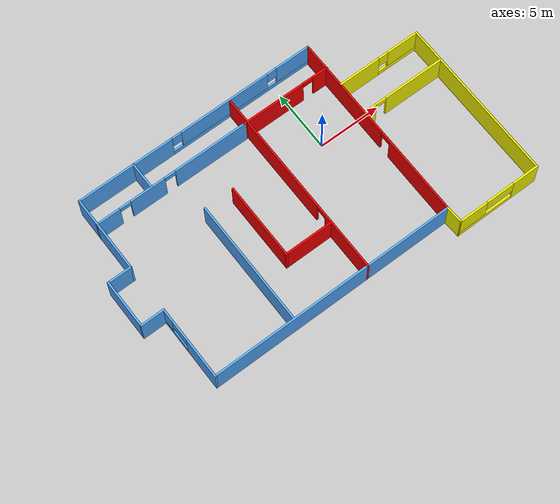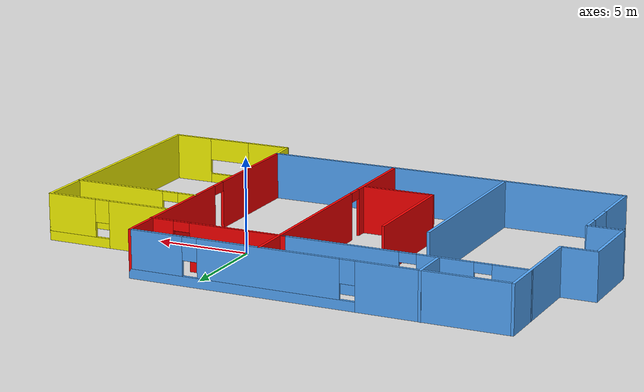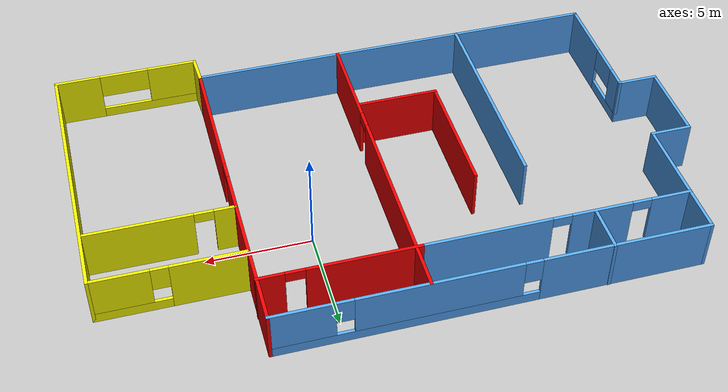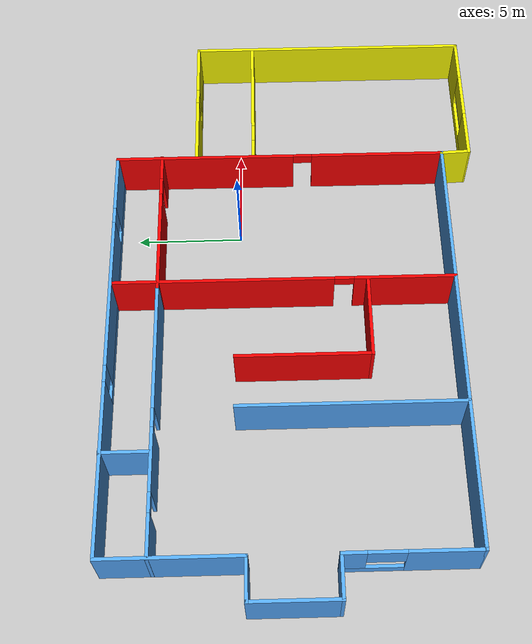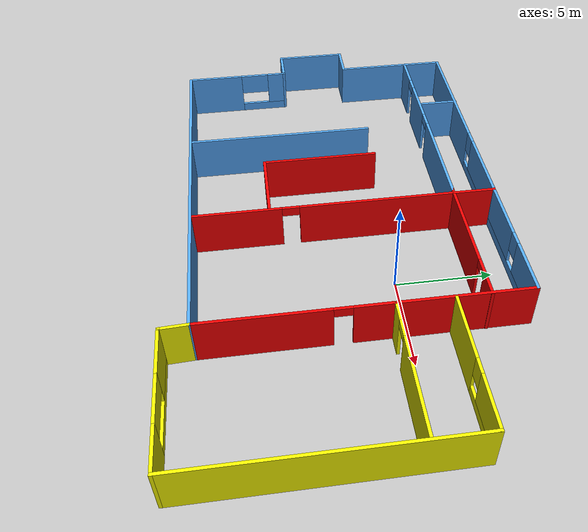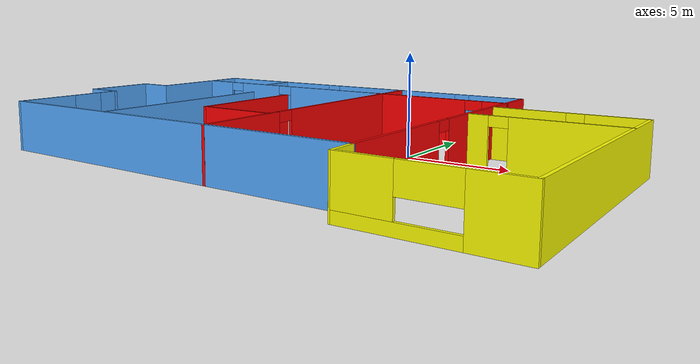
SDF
<?xml version='1.0'?>
<sdf version='1.6'>
  <model name='Q802'>
    <pose frame=''>-4.12697 -2.66081 0 0 -0 0</pose>
    <link name='Wall_10'>
      <collision name='Wall_10_Collision'>
        <geometry>
          <box>
            <size>6.3 0.15 2.5</size>
          </box>
        </geometry>
        <pose frame=''>0 0 1.25 0 -0 0</pose>
      </collision>
      <visual name='Wall_10_Visual'>
        <pose frame=''>0 0 1.25 0 -0 0</pose>
        <geometry>
          <box>
            <size>6.3 0.15 2.5</size>
          </box>
        </geometry>
        <material>
          <script>
            <uri>file://media/materials/scripts/gazebo.material</uri>
            <name>Gazebo/Grey</name>
          </script>
          <ambient>0.333333 0.666667 1 1</ambient>
        </material>
        <meta>
          <layer>0</layer>
        </meta>
      </visual>
      <pose frame=''>-12.4599 5.50976 0 0 -0 1.5708</pose>
    </link>
    <link name='Wall_14'>
      <pose frame=''>10.8849 4.74464 0 0 -0 0</pose>
      <visual name='Wall_14_Visual_0'>
        <pose frame=''>-1.76886 0 1.25 0 -0 0</pose>
        <geometry>
          <box>
            <size>3.46228 0.15 2.5</size>
          </box>
        </geometry>
        <material>
          <script>
            <uri>file://media/materials/scripts/gazebo.material</uri>
            <name>Gazebo/Grey</name>
          </script>
          <ambient>1 1 0 1</ambient>
        </material>
        <meta>
          <layer>0</layer>
        </meta>
      </visual>
      <collision name='Wall_14_Collision_0'>
        <geometry>
          <box>
            <size>3.46228 0.15 2.5</size>
          </box>
        </geometry>
        <pose frame=''>-1.76886 0 1.25 0 -0 0</pose>
      </collision>
      <visual name='Wall_14_Visual_1'>
        <pose frame=''>1.73114 0 0.25 0 -0 0</pose>
        <geometry>
          <box>
            <size>3.53772 0.15 0.5</size>
          </box>
        </geometry>
        <material>
          <script>
            <uri>file://media/materials/scripts/gazebo.material</uri>
            <name>Gazebo/Grey</name>
          </script>
          <ambient>1 1 0 1</ambient>
        </material>
        <meta>
          <layer>0</layer>
        </meta>
      </visual>
      <collision name='Wall_14_Collision_1'>
        <geometry>
          <box>
            <size>3.53772 0.15 0.5</size>
          </box>
        </geometry>
        <pose frame=''>1.73114 0 0.25 0 -0 0</pose>
      </collision>
      <visual name='Wall_14_Visual_2'>
        <pose frame=''>2.13114 0 1.5 0 -0 0</pose>
        <geometry>
          <box>
            <size>2.73772 0.15 2</size>
          </box>
        </geometry>
        <material>
          <script>
            <uri>file://media/materials/scripts/gazebo.material</uri>
            <name>Gazebo/Grey</name>
          </script>
          <ambient>1 1 0 1</ambient>
        </material>
        <meta>
          <layer>0</layer>
        </meta>
      </visual>
      <collision name='Wall_14_Collision_2'>
        <geometry>
          <box>
            <size>2.73772 0.15 2</size>
          </box>
        </geometry>
        <pose frame=''>2.13114 0 1.5 0 -0 0</pose>
      </collision>
      <visual name='Wall_14_Visual_3'>
        <pose frame=''>0.362281 0 1.9 0 -0 0</pose>
        <geometry>
          <box>
            <size>0.8 0.15 1.2</size>
          </box>
        </geometry>
        <material>
          <script>
            <uri>file://media/materials/scripts/gazebo.material</uri>
            <name>Gazebo/Grey</name>
          </script>
          <ambient>1 1 0 1</ambient>
        </material>
        <meta>
          <layer>0</layer>
        </meta>
      </visual>
      <collision name='Wall_14_Collision_3'>
        <geometry>
          <box>
            <size>0.8 0.15 1.2</size>
          </box>
        </geometry>
        <pose frame=''>0.362281 0 1.9 0 -0 0</pose>
      </collision>
    </link>
    <link name='Wall_15'>
      <collision name='Wall_15_Collision'>
        <geometry>
          <box>
            <size>13.5 0.15 2.5</size>
          </box>
        </geometry>
        <pose frame=''>0 0 1.25 0 -0 0</pose>
      </collision>
      <visual name='Wall_15_Visual'>
        <pose frame=''>0 0 1.25 0 -0 0</pose>
        <geometry>
          <box>
            <size>13.5 0.15 2.5</size>
          </box>
        </geometry>
        <material>
          <script>
            <uri>file://media/materials/scripts/gazebo.material</uri>
            <name>Gazebo/Grey</name>
          </script>
          <ambient>1 1 0 1</ambient>
        </material>
        <meta>
          <layer>0</layer>
        </meta>
      </visual>
      <pose frame=''>14.3099 -1.93036 0 0 0 -1.5708</pose>
    </link>
    <link name='Wall_16'>
      <pose frame=''>10.8849 -8.60536 0 0 -0 3.14159</pose>
      <visual name='Wall_16_Visual_0'>
        <pose frame=''>-2.39252 0 1.25 0 -0 0</pose>
        <geometry>
          <box>
            <size>2.21496 0.15 2.5</size>
          </box>
        </geometry>
        <material>
          <script>
            <uri>file://media/materials/scripts/gazebo.material</uri>
            <name>Gazebo/Grey</name>
          </script>
          <ambient>1 1 0 1</ambient>
        </material>
        <meta>
          <layer>0</layer>
        </meta>
      </visual>
      <collision name='Wall_16_Collision_0'>
        <geometry>
          <box>
            <size>2.21496 0.15 2.5</size>
          </box>
        </geometry>
        <pose frame=''>-2.39252 0 1.25 0 -0 0</pose>
      </collision>
      <visual name='Wall_16_Visual_1'>
        <pose frame=''>1.10748 0 0.25 0 -0 0</pose>
        <geometry>
          <box>
            <size>4.78504 0.15 0.5</size>
          </box>
        </geometry>
        <material>
          <script>
            <uri>file://media/materials/scripts/gazebo.material</uri>
            <name>Gazebo/Grey</name>
          </script>
          <ambient>1 1 0 1</ambient>
        </material>
        <meta>
          <layer>0</layer>
        </meta>
      </visual>
      <collision name='Wall_16_Collision_1'>
        <geometry>
          <box>
            <size>4.78504 0.15 0.5</size>
          </box>
        </geometry>
        <pose frame=''>1.10748 0 0.25 0 -0 0</pose>
      </collision>
      <visual name='Wall_16_Visual_2'>
        <pose frame=''>2.28581 0 1.5 0 -0 0</pose>
        <geometry>
          <box>
            <size>2.42838 0.15 2</size>
          </box>
        </geometry>
        <material>
          <script>
            <uri>file://media/materials/scripts/gazebo.material</uri>
            <name>Gazebo/Grey</name>
          </script>
          <ambient>1 1 0 1</ambient>
        </material>
        <meta>
          <layer>0</layer>
        </meta>
      </visual>
      <collision name='Wall_16_Collision_2'>
        <geometry>
          <box>
            <size>2.42838 0.15 2</size>
          </box>
        </geometry>
        <pose frame=''>2.28581 0 1.5 0 -0 0</pose>
      </collision>
      <visual name='Wall_16_Visual_3'>
        <pose frame=''>-0.106709 0 1.9 0 -0 0</pose>
        <geometry>
          <box>
            <size>2.35665 0.15 1.2</size>
          </box>
        </geometry>
        <material>
          <script>
            <uri>file://media/materials/scripts/gazebo.material</uri>
            <name>Gazebo/Grey</name>
          </script>
          <ambient>1 1 0 1</ambient>
        </material>
        <meta>
          <layer>0</layer>
        </meta>
      </visual>
      <collision name='Wall_16_Collision_3'>
        <geometry>
          <box>
            <size>2.35665 0.15 1.2</size>
          </box>
        </geometry>
        <pose frame=''>-0.106709 0 1.9 0 -0 0</pose>
      </collision>
    </link>
    <link name='Wall_17'>
      <collision name='Wall_17_Collision'>
        <geometry>
          <box>
            <size>1.49193 0.15 2.5</size>
          </box>
        </geometry>
        <pose frame=''>0 0 1.25 0 -0 0</pose>
      </collision>
      <visual name='Wall_17_Visual'>
        <pose frame=''>0 0 1.25 0 -0 0</pose>
        <geometry>
          <box>
            <size>1.49193 0.15 2.5</size>
          </box>
        </geometry>
        <material>
          <script>
            <uri>file://media/materials/scripts/gazebo.material</uri>
            <name>Gazebo/Grey</name>
          </script>
          <ambient>1 1 0 1</ambient>
        </material>
        <meta>
          <layer>0</layer>
        </meta>
      </visual>
      <pose frame=''>7.425 -7.9353 0 0 -0 1.62282</pose>
    </link>
    <link name='Wall_19'>
      <pose frame=''>0.378646 0.656096 0 0 0 -1.5708</pose>
      <visual name='Wall_19_Visual_0'>
        <pose frame=''>-2.82346 0 1.25 0 -0 0</pose>
        <geometry>
          <box>
            <size>10.3531 0.15 2.5</size>
          </box>
        </geometry>
        <material>
          <script>
            <uri>file://media/materials/scripts/gazebo.material</uri>
            <name>Gazebo/Grey</name>
          </script>
          <ambient>1 0 0 1</ambient>
        </material>
        <meta>
          <layer>0</layer>
        </meta>
      </visual>
      <collision name='Wall_19_Collision_0'>
        <geometry>
          <box>
            <size>10.3531 0.15 2.5</size>
          </box>
        </geometry>
        <pose frame=''>-2.82346 0 1.25 0 -0 0</pose>
      </collision>
      <visual name='Wall_19_Visual_1'>
        <pose frame=''>5.62654 0 1.25 0 -0 0</pose>
        <geometry>
          <box>
            <size>4.74692 0.15 2.5</size>
          </box>
        </geometry>
        <material>
          <script>
            <uri>file://media/materials/scripts/gazebo.material</uri>
            <name>Gazebo/Grey</name>
          </script>
          <ambient>1 0 0 1</ambient>
        </material>
        <meta>
          <layer>0</layer>
        </meta>
      </visual>
      <collision name='Wall_19_Collision_1'>
        <geometry>
          <box>
            <size>4.74692 0.15 2.5</size>
          </box>
        </geometry>
        <pose frame=''>5.62654 0 1.25 0 -0 0</pose>
      </collision>
      <visual name='Wall_19_Visual_2'>
        <pose frame=''>2.80308 0 2.25 0 -0 0</pose>
        <geometry>
          <box>
            <size>0.9 0.15 0.5</size>
          </box>
        </geometry>
        <material>
          <script>
            <uri>file://media/materials/scripts/gazebo.material</uri>
            <name>Gazebo/Grey</name>
          </script>
          <ambient>1 0 0 1</ambient>
        </material>
        <meta>
          <layer>0</layer>
        </meta>
      </visual>
      <collision name='Wall_19_Collision_2'>
        <geometry>
          <box>
            <size>0.9 0.15 0.5</size>
          </box>
        </geometry>
        <pose frame=''>2.80308 0 2.25 0 -0 0</pose>
      </collision>
    </link>
    <link name='Wall_21'>
      <pose frame=''>3.76429 6.42301 0 0 -0 3.14159</pose>
      <visual name='Wall_21_Visual_0'>
        <pose frame=''>-3.07248 0 1.25 0 -0 0</pose>
        <geometry>
          <box>
            <size>1.31441 0.15 2.5</size>
          </box>
        </geometry>
        <material>
          <script>
            <uri>file://media/materials/scripts/gazebo.material</uri>
            <name>Gazebo/Grey</name>
          </script>
          <ambient>1 0 0 1</ambient>
        </material>
        <meta>
          <layer>0</layer>
        </meta>
      </visual>
      <collision name='Wall_21_Collision_0'>
        <geometry>
          <box>
            <size>1.31441 0.15 2.5</size>
          </box>
        </geometry>
        <pose frame=''>-3.07248 0 1.25 0 -0 0</pose>
      </collision>
      <visual name='Wall_21_Visual_1'>
        <pose frame=''>1.1072 0 1.25 0 -0 0</pose>
        <geometry>
          <box>
            <size>5.24495 0.15 2.5</size>
          </box>
        </geometry>
        <material>
          <script>
            <uri>file://media/materials/scripts/gazebo.material</uri>
            <name>Gazebo/Grey</name>
          </script>
          <ambient>1 0 0 1</ambient>
        </material>
        <meta>
          <layer>0</layer>
        </meta>
      </visual>
      <collision name='Wall_21_Collision_1'>
        <geometry>
          <box>
            <size>5.24495 0.15 2.5</size>
          </box>
        </geometry>
        <pose frame=''>1.1072 0 1.25 0 -0 0</pose>
      </collision>
      <visual name='Wall_21_Visual_2'>
        <pose frame=''>-1.96527 0 2.25 0 -0 0</pose>
        <geometry>
          <box>
            <size>0.9 0.15 0.5</size>
          </box>
        </geometry>
        <material>
          <script>
            <uri>file://media/materials/scripts/gazebo.material</uri>
            <name>Gazebo/Grey</name>
          </script>
          <ambient>1 0 0 1</ambient>
        </material>
        <meta>
          <layer>0</layer>
        </meta>
      </visual>
      <collision name='Wall_21_Collision_2'>
        <geometry>
          <box>
            <size>0.9 0.15 0.5</size>
          </box>
        </geometry>
        <pose frame=''>-1.96527 0 2.25 0 -0 0</pose>
      </collision>
    </link>
    <link name='Wall_22'>
      <pose frame=''>-6.16712 6.42301 0 0 -0 3.14159</pose>
      <visual name='Wall_22_Visual_0'>
        <pose frame=''>-3.32437 0 1.25 0 -0 0</pose>
        <geometry>
          <box>
            <size>6.10127 0.15 2.5</size>
          </box>
        </geometry>
        <material>
          <script>
            <uri>file://media/materials/scripts/gazebo.material</uri>
            <name>Gazebo/Grey</name>
          </script>
          <ambient>0.333333 0.666667 1 1</ambient>
        </material>
        <meta>
          <layer>0</layer>
        </meta>
      </visual>
      <collision name='Wall_22_Collision_0'>
        <geometry>
          <box>
            <size>6.10127 0.15 2.5</size>
          </box>
        </geometry>
        <pose frame=''>-3.32437 0 1.25 0 -0 0</pose>
      </collision>
      <visual name='Wall_22_Visual_1'>
        <pose frame=''>2.07212 0 1.25 0 -0 0</pose>
        <geometry>
          <box>
            <size>2.8917 0.15 2.5</size>
          </box>
        </geometry>
        <material>
          <script>
            <uri>file://media/materials/scripts/gazebo.material</uri>
            <name>Gazebo/Grey</name>
          </script>
          <ambient>0.333333 0.666667 1 1</ambient>
        </material>
        <meta>
          <layer>0</layer>
        </meta>
      </visual>
      <collision name='Wall_22_Collision_1'>
        <geometry>
          <box>
            <size>2.8917 0.15 2.5</size>
          </box>
        </geometry>
        <pose frame=''>2.07212 0 1.25 0 -0 0</pose>
      </collision>
      <visual name='Wall_22_Visual_2'>
        <pose frame=''>5.39648 0 1.25 0 -0 0</pose>
        <geometry>
          <box>
            <size>1.95704 0.15 2.5</size>
          </box>
        </geometry>
        <material>
          <script>
            <uri>file://media/materials/scripts/gazebo.material</uri>
            <name>Gazebo/Grey</name>
          </script>
          <ambient>0.333333 0.666667 1 1</ambient>
        </material>
        <meta>
          <layer>0</layer>
        </meta>
      </visual>
      <collision name='Wall_22_Collision_2'>
        <geometry>
          <box>
            <size>1.95704 0.15 2.5</size>
          </box>
        </geometry>
        <pose frame=''>5.39648 0 1.25 0 -0 0</pose>
      </collision>
      <visual name='Wall_22_Visual_3'>
        <pose frame=''>0.176266 0 2.25 0 -0 0</pose>
        <geometry>
          <box>
            <size>0.9 0.15 0.5</size>
          </box>
        </geometry>
        <material>
          <script>
            <uri>file://media/materials/scripts/gazebo.material</uri>
            <name>Gazebo/Grey</name>
          </script>
          <ambient>0.333333 0.666667 1 1</ambient>
        </material>
        <meta>
          <layer>0</layer>
        </meta>
      </visual>
      <collision name='Wall_22_Collision_3'>
        <geometry>
          <box>
            <size>0.9 0.15 0.5</size>
          </box>
        </geometry>
        <pose frame=''>0.176266 0 2.25 0 -0 0</pose>
      </collision>
      <visual name='Wall_22_Visual_4'>
        <pose frame=''>3.96796 0 2.25 0 -0 0</pose>
        <geometry>
          <box>
            <size>0.9 0.15 0.5</size>
          </box>
        </geometry>
        <material>
          <script>
            <uri>file://media/materials/scripts/gazebo.material</uri>
            <name>Gazebo/Grey</name>
          </script>
          <ambient>0.333333 0.666667 1 1</ambient>
        </material>
        <meta>
          <layer>0</layer>
        </meta>
      </visual>
      <collision name='Wall_22_Collision_4'>
        <geometry>
          <box>
            <size>0.9 0.15 0.5</size>
          </box>
        </geometry>
        <pose frame=''>3.96796 0 2.25 0 -0 0</pose>
      </collision>
    </link>
    <link name='Wall_24'>
      <collision name='Wall_24_Collision'>
        <geometry>
          <box>
            <size>4 0.15 2.5</size>
          </box>
        </geometry>
        <pose frame=''>0 0 1.25 0 -0 0</pose>
      </collision>
      <visual name='Wall_24_Visual'>
        <pose frame=''>0 0 1.25 0 -0 0</pose>
        <geometry>
          <box>
            <size>4 0.15 2.5</size>
          </box>
        </geometry>
        <material>
          <script>
            <uri>file://media/materials/scripts/gazebo.material</uri>
            <name>Gazebo/Grey</name>
          </script>
          <ambient>1 0 0 1</ambient>
        </material>
        <meta>
          <layer>0</layer>
        </meta>
      </visual>
      <pose frame=''>-1.57906 -3.23308 0 0 -0 3.14159</pose>
    </link>
    <link name='Wall_25'>
      <collision name='Wall_25_Collision'>
        <geometry>
          <box>
            <size>6.25 0.15 2.5</size>
          </box>
        </geometry>
        <pose frame=''>0 0 1.25 0 -0 0</pose>
      </collision>
      <visual name='Wall_25_Visual'>
        <pose frame=''>0 0 1.25 0 -0 0</pose>
        <geometry>
          <box>
            <size>6.25 0.15 2.5</size>
          </box>
        </geometry>
        <material>
          <script>
            <uri>file://media/materials/scripts/gazebo.material</uri>
            <name>Gazebo/Grey</name>
          </script>
          <ambient>1 0 0 1</ambient>
        </material>
        <meta>
          <layer>0</layer>
        </meta>
      </visual>
      <pose frame=''>-3.50406 -0.18308 0 0 -0 1.5708</pose>
    </link>
    <link name='Wall_27'>
      <collision name='Wall_27_Collision'>
        <geometry>
          <box>
            <size>10.25 0.15 2.5</size>
          </box>
        </geometry>
        <pose frame=''>0 0 1.25 0 -0 0</pose>
      </collision>
      <visual name='Wall_27_Visual'>
        <pose frame=''>0 0 1.25 0 -0 0</pose>
        <geometry>
          <box>
            <size>10.25 0.15 2.5</size>
          </box>
        </geometry>
        <material>
          <script>
            <uri>file://media/materials/scripts/gazebo.material</uri>
            <name>Gazebo/Grey</name>
          </script>
          <ambient>0.333333 0.666667 1 1</ambient>
        </material>
        <meta>
          <layer>0</layer>
        </meta>
      </visual>
      <pose frame=''>-5.89914 -2.18239 0 0 -0 1.5708</pose>
    </link>
    <link name='Wall_29'>
      <collision name='Wall_29_Collision'>
        <geometry>
          <box>
            <size>2.25 0.15 2.5</size>
          </box>
        </geometry>
        <pose frame=''>0 0 1.25 0 -0 0</pose>
      </collision>
      <visual name='Wall_29_Visual'>
        <pose frame=''>0 0 1.25 0 -0 0</pose>
        <geometry>
          <box>
            <size>2.25 0.15 2.5</size>
          </box>
        </geometry>
        <material>
          <script>
            <uri>file://media/materials/scripts/gazebo.material</uri>
            <name>Gazebo/Grey</name>
          </script>
          <ambient>0.333333 0.666667 1 1</ambient>
        </material>
        <meta>
          <layer>0</layer>
        </meta>
      </visual>
      <pose frame=''>-7.90194 7.55916 0 0 0 -1.5708</pose>
    </link>
    <link name='Wall_3'>
      <pose frame=''>-2.53489 8.58475 0 0 -0 0</pose>
      <visual name='Wall_3_Visual_0'>
        <pose frame=''>-6.04357 0 1.25 0 -0 0</pose>
        <geometry>
          <box>
            <size>7.91286 0.15 2.5</size>
          </box>
        </geometry>
        <material>
          <script>
            <uri>file://media/materials/scripts/gazebo.material</uri>
            <name>Gazebo/Grey</name>
          </script>
          <ambient>0.333333 0.666667 1 1</ambient>
        </material>
        <meta>
          <layer>0</layer>
        </meta>
      </visual>
      <collision name='Wall_3_Collision_0'>
        <geometry>
          <box>
            <size>7.91286 0.15 2.5</size>
          </box>
        </geometry>
        <pose frame=''>-6.04357 0 1.25 0 -0 0</pose>
      </collision>
      <visual name='Wall_3_Visual_1'>
        <pose frame=''>3.95643 0 0.25 0 -0 0</pose>
        <geometry>
          <box>
            <size>12.0871 0.15 0.5</size>
          </box>
        </geometry>
        <material>
          <script>
            <uri>file://media/materials/scripts/gazebo.material</uri>
            <name>Gazebo/Grey</name>
          </script>
          <ambient>0.333333 0.666667 1 1</ambient>
        </material>
        <meta>
          <layer>0</layer>
        </meta>
      </visual>
      <collision name='Wall_3_Collision_1'>
        <geometry>
          <box>
            <size>12.0871 0.15 0.5</size>
          </box>
        </geometry>
        <pose frame=''>3.95643 0 0.25 0 -0 0</pose>
      </collision>
      <visual name='Wall_3_Visual_2'>
        <pose frame=''>2.47675 0 1.5 0 -0 0</pose>
        <geometry>
          <box>
            <size>7.52778 0.15 2</size>
          </box>
        </geometry>
        <material>
          <script>
            <uri>file://media/materials/scripts/gazebo.material</uri>
            <name>Gazebo/Grey</name>
          </script>
          <ambient>0.333333 0.666667 1 1</ambient>
        </material>
        <meta>
          <layer>0</layer>
        </meta>
      </visual>
      <collision name='Wall_3_Collision_2'>
        <geometry>
          <box>
            <size>7.52778 0.15 2</size>
          </box>
        </geometry>
        <pose frame=''>2.47675 0 1.5 0 -0 0</pose>
      </collision>
      <visual name='Wall_3_Visual_3'>
        <pose frame=''>8.52032 0 1.5 0 -0 0</pose>
        <geometry>
          <box>
            <size>2.95936 0.15 2</size>
          </box>
        </geometry>
        <material>
          <script>
            <uri>file://media/materials/scripts/gazebo.material</uri>
            <name>Gazebo/Grey</name>
          </script>
          <ambient>0.333333 0.666667 1 1</ambient>
        </material>
        <meta>
          <layer>0</layer>
        </meta>
      </visual>
      <collision name='Wall_3_Collision_3'>
        <geometry>
          <box>
            <size>2.95936 0.15 2</size>
          </box>
        </geometry>
        <pose frame=''>8.52032 0 1.5 0 -0 0</pose>
      </collision>
      <visual name='Wall_3_Visual_4'>
        <pose frame=''>-1.68714 0 1.9 0 -0 0</pose>
        <geometry>
          <box>
            <size>0.8 0.15 1.2</size>
          </box>
        </geometry>
        <material>
          <script>
            <uri>file://media/materials/scripts/gazebo.material</uri>
            <name>Gazebo/Grey</name>
          </script>
          <ambient>0.333333 0.666667 1 1</ambient>
        </material>
        <meta>
          <layer>0</layer>
        </meta>
      </visual>
      <collision name='Wall_3_Collision_4'>
        <geometry>
          <box>
            <size>0.8 0.15 1.2</size>
          </box>
        </geometry>
        <pose frame=''>-1.68714 0 1.9 0 -0 0</pose>
      </collision>
      <visual name='Wall_3_Visual_5'>
        <pose frame=''>6.64064 0 1.9 0 -0 0</pose>
        <geometry>
          <box>
            <size>0.8 0.15 1.2</size>
          </box>
        </geometry>
        <material>
          <script>
            <uri>file://media/materials/scripts/gazebo.material</uri>
            <name>Gazebo/Grey</name>
          </script>
          <ambient>0.333333 0.666667 1 1</ambient>
        </material>
        <meta>
          <layer>0</layer>
        </meta>
      </visual>
      <collision name='Wall_3_Collision_5'>
        <geometry>
          <box>
            <size>0.8 0.15 1.2</size>
          </box>
        </geometry>
        <pose frame=''>6.64064 0 1.9 0 -0 0</pose>
      </collision>
    </link>
    <link name='Wall_33'>
      <pose frame=''>10.8572 1.97538 0 0 -0 0</pose>
      <visual name='Wall_33_Visual_0'>
        <pose frame=''>-2.97993 0 1.25 0 -0 0</pose>
        <geometry>
          <box>
            <size>1.04014 0.15 2.5</size>
          </box>
        </geometry>
        <material>
          <script>
            <uri>file://media/materials/scripts/gazebo.material</uri>
            <name>Gazebo/Grey</name>
          </script>
          <ambient>1 1 0 1</ambient>
        </material>
        <meta>
          <layer>0</layer>
        </meta>
      </visual>
      <collision name='Wall_33_Collision_0'>
        <geometry>
          <box>
            <size>1.04014 0.15 2.5</size>
          </box>
        </geometry>
        <pose frame=''>-2.97993 0 1.25 0 -0 0</pose>
      </collision>
      <visual name='Wall_33_Visual_1'>
        <pose frame=''>0.970071 0 1.25 0 -0 0</pose>
        <geometry>
          <box>
            <size>5.05986 0.15 2.5</size>
          </box>
        </geometry>
        <material>
          <script>
            <uri>file://media/materials/scripts/gazebo.material</uri>
            <name>Gazebo/Grey</name>
          </script>
          <ambient>1 1 0 1</ambient>
        </material>
        <meta>
          <layer>0</layer>
        </meta>
      </visual>
      <collision name='Wall_33_Collision_1'>
        <geometry>
          <box>
            <size>5.05986 0.15 2.5</size>
          </box>
        </geometry>
        <pose frame=''>0.970071 0 1.25 0 -0 0</pose>
      </collision>
      <visual name='Wall_33_Visual_2'>
        <pose frame=''>-2.00986 0 2.25 0 -0 0</pose>
        <geometry>
          <box>
            <size>0.9 0.15 0.5</size>
          </box>
        </geometry>
        <material>
          <script>
            <uri>file://media/materials/scripts/gazebo.material</uri>
            <name>Gazebo/Grey</name>
          </script>
          <ambient>1 1 0 1</ambient>
        </material>
        <meta>
          <layer>0</layer>
        </meta>
      </visual>
      <collision name='Wall_33_Collision_2'>
        <geometry>
          <box>
            <size>0.9 0.15 0.5</size>
          </box>
        </geometry>
        <pose frame=''>-2.00986 0 2.25 0 -0 0</pose>
      </collision>
    </link>
    <link name='Wall_4'>
      <pose frame=''>7.39011 0.659755 0 0 0 -1.5708</pose>
      <visual name='Wall_4_Visual_0'>
        <pose frame=''>-3.68302 0 1.25 0 -0 0</pose>
        <geometry>
          <box>
            <size>8.63396 0.15 2.5</size>
          </box>
        </geometry>
        <material>
          <script>
            <uri>file://media/materials/scripts/gazebo.material</uri>
            <name>Gazebo/Grey</name>
          </script>
          <ambient>1 0 0 1</ambient>
        </material>
        <meta>
          <layer>0</layer>
        </meta>
      </visual>
      <collision name='Wall_4_Collision_0'>
        <geometry>
          <box>
            <size>8.63396 0.15 2.5</size>
          </box>
        </geometry>
        <pose frame=''>-3.68302 0 1.25 0 -0 0</pose>
      </collision>
      <visual name='Wall_4_Visual_1'>
        <pose frame=''>4.76698 0 1.25 0 -0 0</pose>
        <geometry>
          <box>
            <size>6.46604 0.15 2.5</size>
          </box>
        </geometry>
        <material>
          <script>
            <uri>file://media/materials/scripts/gazebo.material</uri>
            <name>Gazebo/Grey</name>
          </script>
          <ambient>1 0 0 1</ambient>
        </material>
        <meta>
          <layer>0</layer>
        </meta>
      </visual>
      <collision name='Wall_4_Collision_1'>
        <geometry>
          <box>
            <size>6.46604 0.15 2.5</size>
          </box>
        </geometry>
        <pose frame=''>4.76698 0 1.25 0 -0 0</pose>
      </collision>
      <visual name='Wall_4_Visual_2'>
        <pose frame=''>1.08396 0 2.25 0 -0 0</pose>
        <geometry>
          <box>
            <size>0.9 0.15 0.5</size>
          </box>
        </geometry>
        <material>
          <script>
            <uri>file://media/materials/scripts/gazebo.material</uri>
            <name>Gazebo/Grey</name>
          </script>
          <ambient>1 0 0 1</ambient>
        </material>
        <meta>
          <layer>0</layer>
        </meta>
      </visual>
      <collision name='Wall_4_Collision_2'>
        <geometry>
          <box>
            <size>0.9 0.15 0.5</size>
          </box>
        </geometry>
        <pose frame=''>1.08396 0 2.25 0 -0 0</pose>
      </collision>
    </link>
    <link name='Wall_5'>
      <collision name='Wall_5_Collision'>
        <geometry>
          <box>
            <size>20 0.15 2.5</size>
          </box>
        </geometry>
        <pose frame=''>0 0 1.25 0 -0 0</pose>
      </collision>
      <visual name='Wall_5_Visual'>
        <pose frame=''>0 0 1.25 0 -0 0</pose>
        <geometry>
          <box>
            <size>20 0.15 2.5</size>
          </box>
        </geometry>
        <material>
          <script>
            <uri>file://media/materials/scripts/gazebo.material</uri>
            <name>Gazebo/Grey</name>
          </script>
          <ambient>0.333333 0.666667 1 1</ambient>
        </material>
        <meta>
          <layer>0</layer>
        </meta>
      </visual>
      <pose frame=''>-2.53489 -7.26525 0 0 -0 3.14159</pose>
    </link>
    <link name='Wall_6'>
      <pose frame=''>-12.4599 -4.34025 0 0 -0 1.5708</pose>
      <visual name='Wall_6_Visual_0'>
        <pose frame=''>-1.37719 0 1.25 0 -0 0</pose>
        <geometry>
          <box>
            <size>3.24563 0.15 2.5</size>
          </box>
        </geometry>
        <material>
          <script>
            <uri>file://media/materials/scripts/gazebo.material</uri>
            <name>Gazebo/Grey</name>
          </script>
          <ambient>0.333333 0.666667 1 1</ambient>
        </material>
        <meta>
          <layer>0</layer>
        </meta>
      </visual>
      <collision name='Wall_6_Collision_0'>
        <geometry>
          <box>
            <size>3.24563 0.15 2.5</size>
          </box>
        </geometry>
        <pose frame=''>-1.37719 0 1.25 0 -0 0</pose>
      </collision>
      <visual name='Wall_6_Visual_1'>
        <pose frame=''>1.62281 0 0.25 0 -0 0</pose>
        <geometry>
          <box>
            <size>2.75437 0.15 0.5</size>
          </box>
        </geometry>
        <material>
          <script>
            <uri>file://media/materials/scripts/gazebo.material</uri>
            <name>Gazebo/Grey</name>
          </script>
          <ambient>0.333333 0.666667 1 1</ambient>
        </material>
        <meta>
          <layer>0</layer>
        </meta>
      </visual>
      <collision name='Wall_6_Collision_1'>
        <geometry>
          <box>
            <size>2.75437 0.15 0.5</size>
          </box>
        </geometry>
        <pose frame=''>1.62281 0 0.25 0 -0 0</pose>
      </collision>
      <visual name='Wall_6_Visual_2'>
        <pose frame=''>2.44153 0 1.5 0 -0 0</pose>
        <geometry>
          <box>
            <size>1.11694 0.15 2</size>
          </box>
        </geometry>
        <material>
          <script>
            <uri>file://media/materials/scripts/gazebo.material</uri>
            <name>Gazebo/Grey</name>
          </script>
          <ambient>0.333333 0.666667 1 1</ambient>
        </material>
        <meta>
          <layer>0</layer>
        </meta>
      </visual>
      <collision name='Wall_6_Collision_2'>
        <geometry>
          <box>
            <size>1.11694 0.15 2</size>
          </box>
        </geometry>
        <pose frame=''>2.44153 0 1.5 0 -0 0</pose>
      </collision>
      <visual name='Wall_6_Visual_3'>
        <pose frame=''>1.06434 0 1.9 0 -0 0</pose>
        <geometry>
          <box>
            <size>1.63743 0.15 1.2</size>
          </box>
        </geometry>
        <material>
          <script>
            <uri>file://media/materials/scripts/gazebo.material</uri>
            <name>Gazebo/Grey</name>
          </script>
          <ambient>0.333333 0.666667 1 1</ambient>
        </material>
        <meta>
          <layer>0</layer>
        </meta>
      </visual>
      <collision name='Wall_6_Collision_3'>
        <geometry>
          <box>
            <size>1.63743 0.15 1.2</size>
          </box>
        </geometry>
        <pose frame=''>1.06434 0 1.9 0 -0 0</pose>
      </collision>
    </link>
    <link name='Wall_7'>
      <collision name='Wall_7_Collision'>
        <geometry>
          <box>
            <size>2 0.15 2.5</size>
          </box>
        </geometry>
        <pose frame=''>0 0 1.25 0 -0 0</pose>
      </collision>
      <visual name='Wall_7_Visual'>
        <pose frame=''>0 0 1.25 0 -0 0</pose>
        <geometry>
          <box>
            <size>2 0.15 2.5</size>
          </box>
        </geometry>
        <material>
          <script>
            <uri>file://media/materials/scripts/gazebo.material</uri>
            <name>Gazebo/Grey</name>
          </script>
          <ambient>0.333333 0.666667 1 1</ambient>
        </material>
        <meta>
          <layer>0</layer>
        </meta>
      </visual>
      <pose frame=''>-13.3849 -1.41525 0 0 -0 3.14159</pose>
    </link>
    <link name='Wall_8'>
      <collision name='Wall_8_Collision'>
        <geometry>
          <box>
            <size>4 0.15 2.5</size>
          </box>
        </geometry>
        <pose frame=''>0 0 1.25 0 -0 0</pose>
      </collision>
      <visual name='Wall_8_Visual'>
        <pose frame=''>0 0 1.25 0 -0 0</pose>
        <geometry>
          <box>
            <size>4 0.15 2.5</size>
          </box>
        </geometry>
        <material>
          <script>
            <uri>file://media/materials/scripts/gazebo.material</uri>
            <name>Gazebo/Grey</name>
          </script>
          <ambient>0.333333 0.666667 1 1</ambient>
        </material>
        <meta>
          <layer>0</layer>
        </meta>
      </visual>
      <pose frame=''>-14.3099 0.509755 0 0 -0 1.5708</pose>
    </link>
    <link name='Wall_9'>
      <collision name='Wall_9_Collision'>
        <geometry>
          <box>
            <size>2 0.15 2.5</size>
          </box>
        </geometry>
        <pose frame=''>0 0 1.25 0 -0 0</pose>
      </collision>
      <visual name='Wall_9_Visual'>
        <pose frame=''>0 0 1.25 0 -0 0</pose>
        <geometry>
          <box>
            <size>2 0.15 2.5</size>
          </box>
        </geometry>
        <material>
          <script>
            <uri>file://media/materials/scripts/gazebo.material</uri>
            <name>Gazebo/Grey</name>
          </script>
          <ambient>0.333333 0.666667 1 1</ambient>
        </material>
        <meta>
          <layer>0</layer>
        </meta>
      </visual>
      <pose frame=''>-13.3849 2.43476 0 0 -0 0</pose>
    </link>
    <static>1</static>
  </model>
</sdf>
